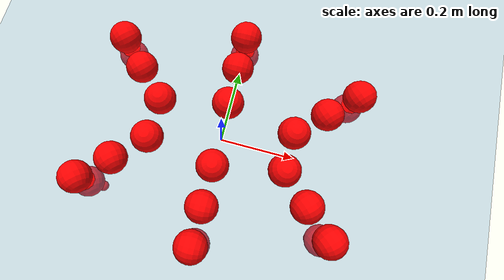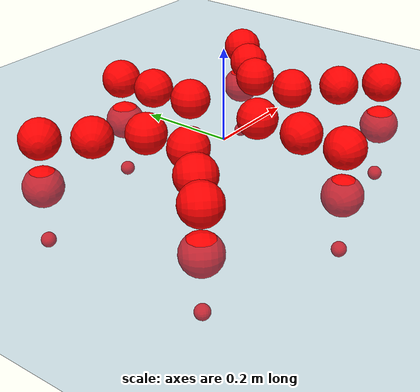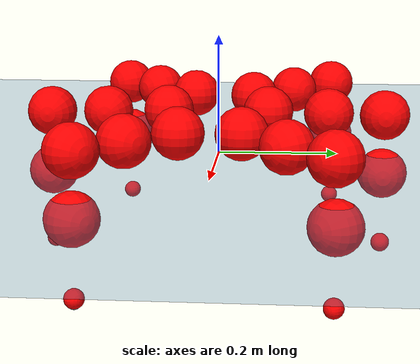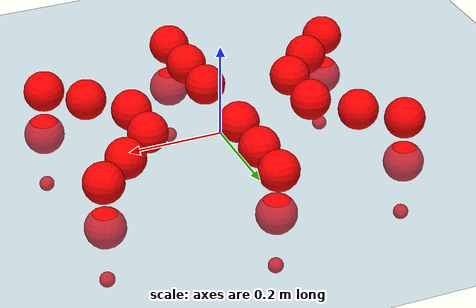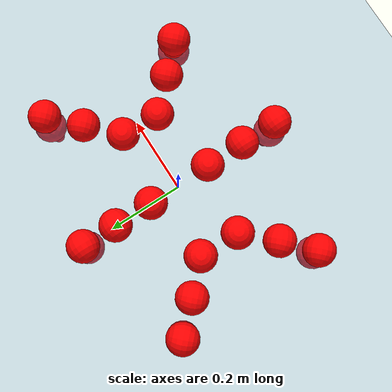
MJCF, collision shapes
<mujoco model="Golem">
  <compiler angle="radian" assetdir="assets" balanceinertia="true" inertiafromgeom="false"/>

  <option timestep="0.005" density="1.2" viscosity="2e-05"/>

  <size nkey="1"/>

  <visual>
    <quality shadowsize="8192"/>
    <map shadowclip="0.5"/>
  </visual>

  <default>
    <default class="/">
      <joint armature="0.01" damping="0.01" frictionloss="0.01"/>
      <geom contype="0" conaffinity="0" group="1" solref="-1000 -80"/>
      <site size="0.01 0.005 0.005" group="5"/>
      <general forcelimited="true" biastype="affine" gainprm="25" biasprm="0 -25 -0.5"/>
      <default class="visual">
        <geom type="mesh" group="2"/>
      </default>
      <default class="collision">
        <geom group="3"/>
      </default>
      <default class="foot">
        <geom size="0.01 0 0" condim="6" group="4" priority="1" solimp="0.015 1 0.01"/>
      </default>
      <default class="reward_collision_sphere">
        <geom group="5" rgba="1 0 0 1"/>
      </default>
    </default>
  </default>

  <asset>
    <texture type="skybox" colorspace="auto" name="//unnamed_texture_0" builtin="gradient" rgb1="0.95 0.95 0.95" rgb2="0.95 0.95 0.95" width="100" height="600"/>
    <texture type="2d" colorspace="auto" name="texplane" builtin="checker" rgb1="0.345 0.575 0.748" rgb2="0.345 0.575 0.748" markrgb="1 1 1" width="512" height="512"/>
    <material name="MatPlane" class="/" texture="texplane" texuniform="true" texrepeat="2 2" specular="0.9"/>
    <mesh name="body" class="/" file="body.stl" scale="0.001 0.001 0.001"/>
    <mesh name="coxa" class="/" file="coxa.stl" scale="0.001 0.001 0.001"/>
    <mesh name="femur" class="/" file="femur.stl" scale="0.001 0.001 0.001"/>
    <mesh name="tibia" class="/" file="tibia.stl" scale="0.001 0.001 0.001"/>
    <mesh name="tarsus" class="/" file="tarsus.stl" scale="0.001 0.001 0.001"/>
  </asset>

  <worldbody>
    <geom name="floor" class="/" size="100 100 0.125" type="plane" group="0" material="MatPlane"/>
    <light name="toplight_shadow" class="/" pos="0 0 5" dir="0.0990148 0.0990148 -0.990148" type="directional" ambient="0.04 0.04 0.04" diffuse="0.55 0.55 0.55" specular="0.12 0.12 0.12"/>
    <light name="toplight_fill" class="/" pos="0 0 5" dir="0.0990148 0.0990148 -0.990148" type="directional" castshadow="false" ambient="0.04 0.04 0.04" diffuse="0.3 0.3 0.3" specular="0.08 0.08 0.08"/>
    <body name="trunk" pos="-0.00206761 -0.0016727 -0.00107578" quat="1 0.000175749 -0.000204828 4.14613e-05">
      <inertial pos="0.0024438 -0.00115671 -0.00404803" quat="0.99996 0.00424938 0.0043976 -0.00648913" mass="4.4083" diaginertia="0.0197347 0.00619747 0.0174943"/>
      <joint name="//unnamed_joint_0" type="free"/>
      <geom name="//unnamed_geom_1" class="/" pos="0 0 0.0709768" quat="1 0 0 0" type="mesh" rgba="0.9 0.9 0.9 1" mesh="body"/>
      <site name="imu" class="/" pos="0.162142 0.0102776 0.109662" size="0.0105347"/>
      <camera name="track" class="/" pos="0 -1.81808 0" quat="0.707107 0.707107 0 0" mode="trackcom"/>
      <camera name="ego_camera" class="/" pos="0.148507 0 0.110901" quat="-0.5 -0.5 0.5 0.5"/>
      <body name="coxa_RR" pos="-0.203711 -0.0782494 0.0709992" quat="0.382624 1.01122e-05 -2.06019e-05 -0.923904">
        <inertial pos="-1.47531e-05 -0.000895321 0.000185227" quat="0.999999 0.000914005 -0.00037203 -0.000584301" mass="0.231241" diaginertia="0.0187857 0.00613702 0.0161151"/>
        <joint name="coxa_joint_RR" class="/" pos="0 0 0" axis="0.000838778 -0.000218013 -1" range="-3.14169 3.13052" armature="0.0109737" damping="0.00470801" frictionloss="0.0107094"/>
        <geom name="//unnamed_geom_2" class="/" type="mesh" rgba="0.2 0.2 0.2 1" mesh="coxa"/>
        <geom name="//unnamed_geom_3" class="reward_collision_sphere" size="0.0421389" pos="-0.0342708 0 0"/>
        <body name="femur_RR" pos="0.0702459 0.00276618 -0.00217687" quat="0.500498 -0.499791 0.49948 0.50023">
          <inertial pos="-0.00267236 -6.28654e-05 -0.00230176" quat="0.99992 0.00893781 0.00726887 -0.00525213" mass="0.226442" diaginertia="0.0186755 0.00597139 0.016337"/>
          <joint name="femur_joint_RR" class="/" pos="0 0 0" axis="-3.23438e-05 0.00258855 -0.999997" stiffness="0.00880703" range="-3.12525 3.14598" armature="0.0106726" damping="0.00865186" frictionloss="0.0104802"/>
          <geom name="//unnamed_geom_4" class="/" type="mesh" rgba="0.9 0.9 0.9 1" mesh="femur"/>
          <geom name="//unnamed_geom_5" class="reward_collision_sphere" size="0.0421389"/>
          <body name="tibia_RR" pos="0.00158083 -0.0988354 -0.00213557" quat="6.146e-05 1 -8.28233e-05 -6.10887e-06">
            <inertial pos="0.000482806 8.88099e-05 -0.0028063" quat="0.999967 0.00263978 -0.000764522 0.00768719" mass="0.241275" diaginertia="0.0202398 0.0065672 0.017162"/>
            <joint name="tibia_joint_RR" class="/" pos="0 0 0" axis="-0.00135459 -0.0146992 0.999891" range="-3.17432 3.13794" armature="0.0101081" damping="0.00273541" frictionloss="0.00917688"/>
            <geom name="//unnamed_geom_6" class="/" type="mesh" rgba="0.2 0.2 0.2 1" mesh="tibia"/>
            <geom name="//unnamed_geom_7" class="reward_collision_sphere" size="0.0421389"/>
            <body name="tarsus_RR" pos="0.0984606 0.00107138 7.38916e-05" quat="1 0.000273689 -3.23411e-06 -6.10394e-05">
              <inertial pos="0.0693753 0.000539546 0.000650653" quat="0.499301 0.489862 0.505763 0.504914" mass="0.234235" diaginertia="0.0191084 0.00608973 0.0169203"/>
              <joint name="tarsus_joint_RR" class="/" pos="0 0 0" axis="0.00052565 0.00983963 0.999951" range="-3.13865 3.09904" armature="0.0103783" damping="0.0444297" frictionloss="0.0101615"/>
              <geom name="//unnamed_geom_8" class="/" type="mesh" rgba="0.9 0.9 0.9 1" mesh="tarsus"/>
              <geom name="foot_1" class="foot" size="0.0106961" pos="0.127944 0 0" quat="0 -0.707107 0 0.707107"/>
              <geom name="//unnamed_geom_10" class="reward_collision_sphere" size="0.0421389"/>
              <geom name="//unnamed_geom_11" class="reward_collision_sphere" size="0.0158021" pos="0.122804 0 0"/>
              <site name="foot_1" class="foot" pos="0.127944 0 0" quat="0 -0.707107 0 0.707107" size="0.0105347"/>
            </body>
          </body>
        </body>
      </body>
      <body name="coxa_RM" pos="0.0011457 -0.118089 0.0731447" quat="0.707232 0.00103731 -0.000897587 -0.70698">
        <inertial pos="-0.00259189 0.000591433 -0.00269845" quat="0.999922 -0.00384957 -0.0025178 -0.0116006" mass="0.234387" diaginertia="0.0184953 0.00618375 0.0166756"/>
        <joint name="coxa_joint_RM" class="/" pos="0 0 0" axis="0.00317164 -0.0024628 -0.999992" range="-3.11813 3.15271" armature="0.0100505" damping="0.00891807" frictionloss="0.0102466"/>
        <geom name="//unnamed_geom_12" class="/" type="mesh" rgba="0.2 0.2 0.2 1" mesh="coxa"/>
        <geom name="//unnamed_geom_13" class="reward_collision_sphere" size="0.0421389" pos="-0.0342708 0 0"/>
        <body name="femur_RM" pos="0.0694368 0.000991709 -0.00234284" quat="0.500412 -0.499216 0.499606 0.500764">
          <inertial pos="0.00276684 -0.000141618 -8.81018e-05" quat="0.999914 -0.0127206 0.00223539 0.00229067" mass="0.237102" diaginertia="0.0192895 0.00601255 0.0170275"/>
          <joint name="femur_joint_RM" class="/" pos="0 0 0" axis="-0.0130651 0.0019924 -0.999913" range="-3.12872 3.14429" armature="0.0105181" damping="0.00742401" frictionloss="0.0108166"/>
          <geom name="//unnamed_geom_14" class="/" type="mesh" rgba="0.9 0.9 0.9 1" mesh="femur"/>
          <geom name="//unnamed_geom_15" class="reward_collision_sphere" size="0.0421389"/>
          <body name="tibia_RM" pos="0.00178469 -0.0975146 0.00026612" quat="0.000119818 1 -1.89213e-06 3.07504e-05">
            <inertial pos="-0.00250764 1.15299e-05 -0.00169746" quat="0.999987 0.00115023 -0.00445114 0.00225205" mass="0.23582" diaginertia="0.0198723 0.00595556 0.0160398"/>
            <joint name="tibia_joint_RM" class="/" pos="0 0 0" axis="-0.00572954 0.00626238 0.999964" range="-3.1318 3.13448" armature="0.0105437" damping="0.0111906" frictionloss="0.0104888"/>
            <geom name="//unnamed_geom_16" class="/" type="mesh" rgba="0.2 0.2 0.2 1" mesh="tibia"/>
            <geom name="//unnamed_geom_17" class="reward_collision_sphere" size="0.0421389"/>
            <body name="tarsus_RM" pos="0.103356 9.27684e-05 -0.000749423" quat="1 2.9283e-05 2.80508e-05 -2.73296e-05">
              <inertial pos="0.0697187 0.00100617 0.000333643" quat="0.495679 0.500701 0.500858 0.502735" mass="0.231556" diaginertia="0.0186841 0.0061724 0.0172145"/>
              <joint name="tarsus_joint_RM" class="/" pos="0 0 0" axis="0.00988131 0.00887368 0.999912" range="-3.14137 3.14139" armature="0.0103585" damping="0.00429269" frictionloss="0.0104797"/>
              <geom name="//unnamed_geom_18" class="/" type="mesh" rgba="0.9 0.9 0.9 1" mesh="tarsus"/>
              <geom name="foot_2" class="foot" size="0.00955208" pos="0.127944 0 0" quat="0 -0.707107 0 0.707107"/>
              <geom name="//unnamed_geom_20" class="reward_collision_sphere" size="0.0421389"/>
              <geom name="//unnamed_geom_21" class="reward_collision_sphere" size="0.0158021" pos="0.122804 0 0"/>
              <site name="foot_2" class="foot" pos="0.127944 0 0" quat="0 -0.707107 0 0.707107" size="0.0105347"/>
            </body>
          </body>
        </body>
      </body>
      <body name="coxa_RF" pos="0.202833 -0.0730956 0.0694105" quat="0.923886 -6.11004e-05 -2.5207e-05 -0.382668">
        <inertial pos="-0.00238631 -0.00124804 6.83272e-05" quat="0.999906 0.0121079 -0.00643755 0.00054891" mass="0.240618" diaginertia="0.0199337 0.00601026 0.0168864"/>
        <joint name="coxa_joint_RF" class="/" pos="0 0 0" axis="0.00337777 -0.00249793 -0.999991" range="-3.14883 3.1374" armature="0.0117363" damping="0.0120524" frictionloss="0.0106994"/>
        <geom name="//unnamed_geom_22" class="/" type="mesh" rgba="0.2 0.2 0.2 1" mesh="coxa"/>
        <geom name="//unnamed_geom_23" class="reward_collision_sphere" size="0.0421389" pos="-0.0342708 0 0"/>
        <body name="femur_RF" pos="0.0688072 -0.000766787 0.00207661" quat="0.499986 -0.500274 0.499742 0.499999">
          <inertial pos="0.00147409 0.00255494 0.00136941" quat="0.999999 0.000500124 -0.00103627 0.000636831" mass="0.22653" diaginertia="0.0198542 0.00597053 0.0168496"/>
          <joint name="femur_joint_RF" class="/" pos="0 0 0" axis="0.00606378 0.00819823 -0.999948" range="-3.16202 3.09472" armature="0.0104275" damping="0.00431312" frictionloss="0.0109882"/>
          <geom name="//unnamed_geom_24" class="/" type="mesh" rgba="0.9 0.9 0.9 1" mesh="femur"/>
          <geom name="//unnamed_geom_25" class="reward_collision_sphere" size="0.0421389"/>
          <body name="tibia_RF" pos="-0.000128813 -0.0957168 0.00200303" quat="-4.38515e-05 1 -3.89048e-05 -7.30844e-05">
            <inertial pos="-0.00221154 -0.00235602 0.00255254" quat="0.99997 0.00319583 -0.00699127 -0.000544589" mass="0.240391" diaginertia="0.0194066 0.00618336 0.0168596"/>
            <joint name="tibia_joint_RF" class="/" pos="0 0 0" axis="-0.00381316 0.00582613 0.999976" range="-3.13541 3.08763" armature="0.0110041" damping="0.00806089" frictionloss="0.0106335"/>
            <geom name="//unnamed_geom_26" class="/" type="mesh" rgba="0.2 0.2 0.2 1" mesh="tibia"/>
            <geom name="//unnamed_geom_27" class="reward_collision_sphere" size="0.0421389"/>
            <body name="tarsus_RF" pos="0.10182 0.00260267 -0.00228841" quat="0.999999 1.61441e-06 0.000334399 0.00109197">
              <inertial pos="0.0698299 -9.07833e-06 -0.000504483" quat="0.499479 0.500664 0.503449 0.496382" mass="0.234426" diaginertia="0.0196861 0.00642929 0.016279"/>
              <joint name="tarsus_joint_RF" class="/" pos="0 0 0" axis="0.00168797 0.000904056 0.999998" range="-3.16567 3.13409" armature="0.0119569" damping="0.00737167" frictionloss="0.0117985"/>
              <geom name="//unnamed_geom_28" class="/" type="mesh" rgba="0.9 0.9 0.9 1" mesh="tarsus"/>
              <geom name="foot_3" class="foot" size="0.0116017" pos="0.127944 0 0" quat="0 -0.707107 0 0.707107"/>
              <geom name="//unnamed_geom_30" class="reward_collision_sphere" size="0.0421389"/>
              <geom name="//unnamed_geom_31" class="reward_collision_sphere" size="0.0158021" pos="0.122804 0 0"/>
              <site name="foot_3" class="foot" pos="0.127944 0 0" quat="0 -0.707107 0 0.707107" size="0.0105347"/>
            </body>
          </body>
        </body>
      </body>
      <body name="coxa_LR" pos="-0.202227 0.0771269 0.069047" quat="0.382028 0.00100759 -0.000431562 0.92415">
        <inertial pos="0.00106233 -0.0011652 -0.00224515" quat="0.999917 -0.00378855 -0.0108364 -0.00592823" mass="0.219914" diaginertia="0.0189805 0.00605818 0.0161135"/>
        <joint name="coxa_joint_LR" class="/" pos="0 0 0" axis="-0.00355828 0.000574003 -0.999994" stiffness="0.00655008" range="-3.12697 3.18894" armature="0.0118686" damping="0.00878567" frictionloss="0.00921237"/>
        <geom name="//unnamed_geom_32" class="/" type="mesh" rgba="0.2 0.2 0.2 1" mesh="coxa"/>
        <geom name="//unnamed_geom_33" class="reward_collision_sphere" size="0.0421389" pos="-0.0342708 0 0"/>
        <body name="femur_LR" pos="0.069268 0.000517056 -0.00167063" quat="0.500178 -0.500106 0.499985 0.499731">
          <inertial pos="-0.000762404 0.000295821 -6.85548e-06" quat="0.999971 0.00243066 0.00625472 0.00369677" mass="0.229802" diaginertia="0.0190159 0.00627792 0.0164138"/>
          <joint name="femur_joint_LR" class="/" pos="0 0 0" axis="-0.000414142 -0.00208659 0.999998" range="-3.13857 3.08772" armature="0.0116017" damping="0.001154" frictionloss="0.0108379"/>
          <geom name="//unnamed_geom_34" class="/" type="mesh" rgba="0.9 0.9 0.9 1" mesh="femur"/>
          <geom name="//unnamed_geom_35" class="reward_collision_sphere" size="0.0421389"/>
          <body name="tibia_LR" pos="-0.00214864 -0.0999688 -0.00138354" quat="0.000796145 0.999999 0.000953195 -0.000490423">
            <inertial pos="0.00199099 0.00275939 0.000333265" quat="0.999912 0.0078039 0.0093857 0.0051604" mass="0.227107" diaginertia="0.0200775 0.00642612 0.0162831"/>
            <joint name="tibia_joint_LR" class="/" pos="0 0 0" axis="0.00174678 0.00410289 -0.99999" stiffness="0.00227128" range="-3.14482 3.14433" armature="0.0103356" damping="0.00842579" frictionloss="0.0113196"/>
            <geom name="//unnamed_geom_36" class="/" type="mesh" rgba="0.2 0.2 0.2 1" mesh="tibia"/>
            <geom name="//unnamed_geom_37" class="reward_collision_sphere" size="0.0421389"/>
            <body name="tarsus_LR" pos="0.103365 0.00165749 -0.000845349" quat="1 -0.000215546 -1.28091e-05 0.000185365">
              <inertial pos="0.0680664 -0.00154742 0.000184663" quat="0.500549 0.501001 0.501769 0.496666" mass="0.229204" diaginertia="0.0191505 0.0060451 0.0163451"/>
              <joint name="tarsus_joint_LR" class="/" pos="0 0 0" axis="0.000644146 -0.000428965 -1" range="-3.11888 3.16161" armature="0.00907726" damping="0.0274964" frictionloss="0.0106243"/>
              <geom name="//unnamed_geom_38" class="/" type="mesh" rgba="0.9 0.9 0.9 1" mesh="tarsus"/>
              <geom name="foot_4" class="foot" size="0.0102033" pos="0.127944 0 0" quat="0.707107 0 -0.707107 0"/>
              <geom name="//unnamed_geom_40" class="reward_collision_sphere" size="0.0421389"/>
              <geom name="//unnamed_geom_41" class="reward_collision_sphere" size="0.0158021" pos="0.122804 0 0"/>
              <site name="foot_4" class="foot" pos="0.127944 0 0" quat="0.707107 0 -0.707107 0" size="0.0105347"/>
            </body>
          </body>
        </body>
      </body>
      <body name="coxa_LM" pos="-0.00264664 0.119873 0.0721009" quat="0.707567 5.40922e-05 -0.000775385 0.706646">
        <inertial pos="0.00300875 -0.00275694 -0.000897152" quat="0.999907 0.00665743 -0.0117202 -0.00196428" mass="0.237096" diaginertia="0.0190978 0.00622815 0.0169186"/>
        <joint name="coxa_joint_LM" class="/" pos="0 0 0" axis="-0.000409307 0.00304825 -0.999995" stiffness="0.00669149" range="-3.14976 3.142" armature="0.0116557" damping="0" frictionloss="0.010324"/>
        <geom name="//unnamed_geom_42" class="/" type="mesh" rgba="0.2 0.2 0.2 1" mesh="coxa"/>
        <geom name="//unnamed_geom_43" class="reward_collision_sphere" size="0.0421389" pos="-0.0342708 0 0"/>
        <body name="femur_LM" pos="0.0680567 -0.000136827 -0.00212903" quat="0.500825 -0.500262 0.499421 0.499491">
          <inertial pos="-0.00267806 -0.000495443 -0.00275405" quat="0.999966 -0.00777453 0.00279744 -0.000384356" mass="0.248969" diaginertia="0.0202761 0.00632643 0.0172579"/>
          <joint name="femur_joint_LM" class="/" pos="0 0 0" axis="0.000358731 -0.00140867 0.999999" stiffness="0.000699056" range="-3.1012 3.12481" armature="0.0116939" damping="0" frictionloss="0.0105958"/>
          <geom name="//unnamed_geom_44" class="/" type="mesh" rgba="0.9 0.9 0.9 1" mesh="femur"/>
          <geom name="//unnamed_geom_45" class="reward_collision_sphere" size="0.0421389"/>
          <body name="tibia_LM" pos="0.00225331 -0.0941731 0.000272592" quat="1.26838e-06 1 0.000121809 0.000148605">
            <inertial pos="0.00273023 0.00143458 0.00225867" quat="1 0.000759542 0.000335697 -0.000529574" mass="0.233063" diaginertia="0.0192279 0.00597772 0.0172473"/>
            <joint name="tibia_joint_LM" class="/" pos="0 0 0" axis="0.0028878 0.00558704 -0.99998" range="-3.15357 3.14053" armature="0.0116726" damping="0" frictionloss="0.00918683"/>
            <geom name="//unnamed_geom_46" class="/" type="mesh" rgba="0.2 0.2 0.2 1" mesh="tibia"/>
            <geom name="//unnamed_geom_47" class="reward_collision_sphere" size="0.0421389"/>
            <body name="tarsus_LM" pos="0.100034 -0.00274254 0.00226338" quat="0.999999 0.00103839 -0.000328513 -0.0001237">
              <inertial pos="0.0685087 0.000613991 0.00189748" quat="0.5012 0.497691 0.49953 0.50157" mass="0.241366" diaginertia="0.0193961 0.00657743 0.0172235"/>
              <joint name="tarsus_joint_LM" class="/" pos="0 0 0" axis="-0.00928246 0.00766834 -0.999928" stiffness="0.0106687" range="-3.18086 3.12081" armature="0.0105994" damping="0.0122858" frictionloss="0.0103717"/>
              <geom name="//unnamed_geom_48" class="/" type="mesh" rgba="0.9 0.9 0.9 1" mesh="tarsus"/>
              <geom name="foot_5" class="foot" size="0.0105245" pos="0.127944 0 0" quat="0.707107 0 -0.707107 0"/>
              <geom name="//unnamed_geom_50" class="reward_collision_sphere" size="0.0421389"/>
              <geom name="//unnamed_geom_51" class="reward_collision_sphere" size="0.0158021" pos="0.122804 0 0"/>
              <site name="foot_5" class="foot" pos="0.127944 0 0" quat="0.707107 0 -0.707107 0" size="0.0105347"/>
            </body>
          </body>
        </body>
      </body>
      <body name="coxa_LF" pos="0.20542 0.0750067 0.0707401" quat="0.923788 -0.00113068 0.00088767 0.382901">
        <inertial pos="0.000598147 0.00263778 -0.000528635" quat="0.999999 -0.00136897 -0.000145258 0.000137745" mass="0.233116" diaginertia="0.0196054 0.00660818 0.0173918"/>
        <joint name="coxa_joint_LF" class="/" pos="0 0 0" axis="0.0126096 0.00625369 -0.999901" range="-3.14636 3.13161" armature="0.0116172" damping="0.0083683" frictionloss="0.0102136"/>
        <geom name="//unnamed_geom_52" class="/" type="mesh" rgba="0.2 0.2 0.2 1" mesh="coxa"/>
        <geom name="//unnamed_geom_53" class="reward_collision_sphere" size="0.0421389" pos="-0.0342708 0 0"/>
        <body name="femur_LF" pos="0.0684243 -0.00173273 -0.0030974" quat="0.499247 -0.500234 0.499513 0.501004">
          <inertial pos="0.00225148 0.000985638 0.00236703" quat="0.999903 -0.0089857 0.0103518 0.00239974" mass="0.231791" diaginertia="0.0189703 0.00637571 0.0168257"/>
          <joint name="femur_joint_LF" class="/" pos="0 0 0" axis="-0.00164759 -0.0111817 0.999936" range="-3.14812 3.0868" armature="0.0104266" damping="0" frictionloss="0.0100507"/>
          <geom name="//unnamed_geom_54" class="/" type="mesh" rgba="0.9 0.9 0.9 1" mesh="femur"/>
          <geom name="//unnamed_geom_55" class="reward_collision_sphere" size="0.0421389"/>
          <body name="tibia_LF" pos="-0.00108318 -0.100267 -0.00118158" quat="-0.000860033 0.999999 0.00102367 -7.2697e-05">
            <inertial pos="-0.000955461 -0.00269559 -0.000316809" quat="0.999987 -0.00151926 0.00158773 -0.00461419" mass="0.232949" diaginertia="0.0191542 0.00622442 0.0168809"/>
            <joint name="tibia_joint_LF" class="/" pos="0 0 0" axis="0.00954368 0.0117559 -0.999885" range="-3.1949 3.13665" armature="0.0116291" damping="0.00442354" frictionloss="0.011989"/>
            <geom name="//unnamed_geom_56" class="/" type="mesh" rgba="0.2 0.2 0.2 1" mesh="tibia"/>
            <geom name="//unnamed_geom_57" class="reward_collision_sphere" size="0.0421389"/>
            <body name="tarsus_LF" pos="0.10133 0.00248676 -0.00146341" quat="0.999999 0.000584995 0.000194839 0.000899828">
              <inertial pos="0.0679749 0.000690381 -0.000457397" quat="0.499505 0.500212 0.498688 0.501591" mass="0.233284" diaginertia="0.019006 0.00611428 0.0160794"/>
              <joint name="tarsus_joint_LF" class="/" pos="0 0 0" axis="-0.013127 -0.00245654 -0.999911" stiffness="0.0298127" range="-3.14177 3.08399" armature="0.0104287" damping="0.0279081" frictionloss="0.0111369"/>
              <geom name="//unnamed_geom_58" class="/" type="mesh" rgba="0.9 0.9 0.9 1" mesh="tarsus"/>
              <geom name="foot_6" class="foot" size="0.00942061" pos="0.127944 0 0" quat="0.707107 0 -0.707107 0"/>
              <geom name="//unnamed_geom_60" class="reward_collision_sphere" size="0.0421389"/>
              <geom name="//unnamed_geom_61" class="reward_collision_sphere" size="0.0158021" pos="0.122804 0 0"/>
              <site name="foot_6" class="foot" pos="0.127944 0 0" quat="0.707107 0 -0.707107 0" size="0.0105347"/>
            </body>
          </body>
        </body>
      </body>
    </body>
  </worldbody>

  <contact>
    <pair class="/" geom1="floor" geom2="foot_1" name="//unnamed_contact_0"/>
    <pair class="/" geom1="floor" geom2="foot_2" name="//unnamed_contact_1"/>
    <pair class="/" geom1="floor" geom2="foot_3" name="//unnamed_contact_2"/>
    <pair class="/" geom1="floor" geom2="foot_4" name="//unnamed_contact_3"/>
    <pair class="/" geom1="floor" geom2="foot_5" name="//unnamed_contact_4"/>
    <pair class="/" geom1="floor" geom2="foot_6" name="//unnamed_contact_5"/>
  </contact>

  <actuator>
    <general name="coxa_joint_RR" class="/" joint="coxa_joint_RR" forcerange="-6.91957 6.91957" gainprm="24.9283" biasprm="0 -24.9283 -0.517796"/>
    <general name="femur_joint_RR" class="/" joint="femur_joint_RR" forcerange="-7.93894 7.93894" gainprm="24.9283" biasprm="0 -24.9283 -0.517796"/>
    <general name="tibia_joint_RR" class="/" joint="tibia_joint_RR" forcerange="-6.98756 6.98756" gainprm="24.9283" biasprm="0 -24.9283 -0.517796"/>
    <general name="tarsus_joint_RR" class="/" joint="tarsus_joint_RR" forcerange="-8.1023 8.1023" gainprm="24.9283" biasprm="0 -24.9283 -0.517796"/>
    <general name="coxa_joint_RM" class="/" joint="coxa_joint_RM" forcerange="-7.68984 7.68984" gainprm="24.9283" biasprm="0 -24.9283 -0.517796"/>
    <general name="femur_joint_RM" class="/" joint="femur_joint_RM" forcerange="-7.73565 7.73565" gainprm="24.9283" biasprm="0 -24.9283 -0.517796"/>
    <general name="tibia_joint_RM" class="/" joint="tibia_joint_RM" forcerange="-6.8894 6.8894" gainprm="24.9283" biasprm="0 -24.9283 -0.517796"/>
    <general name="tarsus_joint_RM" class="/" joint="tarsus_joint_RM" forcerange="-8.42359 8.42359" gainprm="24.9283" biasprm="0 -24.9283 -0.517796"/>
    <general name="coxa_joint_RF" class="/" joint="coxa_joint_RF" forcerange="-7.39393 7.39393" gainprm="24.9283" biasprm="0 -24.9283 -0.517796"/>
    <general name="femur_joint_RF" class="/" joint="femur_joint_RF" forcerange="-7.54987 7.54987" gainprm="24.9283" biasprm="0 -24.9283 -0.517796"/>
    <general name="tibia_joint_RF" class="/" joint="tibia_joint_RF" forcerange="-8.47754 8.47754" gainprm="24.9283" biasprm="0 -24.9283 -0.517796"/>
    <general name="tarsus_joint_RF" class="/" joint="tarsus_joint_RF" forcerange="-7.89205 7.89205" gainprm="24.9283" biasprm="0 -24.9283 -0.517796"/>
    <general name="coxa_joint_LR" class="/" joint="coxa_joint_LR" forcerange="-7.75583 7.75583" gainprm="24.9283" biasprm="0 -24.9283 -0.517796"/>
    <general name="femur_joint_LR" class="/" joint="femur_joint_LR" forcerange="-6.90869 6.90869" gainprm="24.9283" biasprm="0 -24.9283 -0.517796"/>
    <general name="tibia_joint_LR" class="/" joint="tibia_joint_LR" forcerange="-7.50964 7.50964" gainprm="24.9283" biasprm="0 -24.9283 -0.517796"/>
    <general name="tarsus_joint_LR" class="/" joint="tarsus_joint_LR" forcerange="-7.06807 7.06807" gainprm="24.9283" biasprm="0 -24.9283 -0.517796"/>
    <general name="coxa_joint_LM" class="/" joint="coxa_joint_LM" forcerange="-7.50806 7.50806" gainprm="24.9283" biasprm="0 -24.9283 -0.517796"/>
    <general name="femur_joint_LM" class="/" joint="femur_joint_LM" forcerange="-7.8927 7.8927" gainprm="24.9283" biasprm="0 -24.9283 -0.517796"/>
    <general name="tibia_joint_LM" class="/" joint="tibia_joint_LM" forcerange="-6.98557 6.98557" gainprm="24.9283" biasprm="0 -24.9283 -0.517796"/>
    <general name="tarsus_joint_LM" class="/" joint="tarsus_joint_LM" forcerange="-7.99338 7.99338" gainprm="24.9283" biasprm="0 -24.9283 -0.517796"/>
    <general name="coxa_joint_LF" class="/" joint="coxa_joint_LF" forcerange="-7.70079 7.70079" gainprm="24.9283" biasprm="0 -24.9283 -0.517796"/>
    <general name="femur_joint_LF" class="/" joint="femur_joint_LF" forcerange="-7.4423 7.4423" gainprm="24.9283" biasprm="0 -24.9283 -0.517796"/>
    <general name="tibia_joint_LF" class="/" joint="tibia_joint_LF" forcerange="-8.32605 8.32605" gainprm="24.9283" biasprm="0 -24.9283 -0.517796"/>
    <general name="tarsus_joint_LF" class="/" joint="tarsus_joint_LF" forcerange="-7.54041 7.54041" gainprm="24.9283" biasprm="0 -24.9283 -0.517796"/>
  </actuator>

  <sensor>
    <gyro site="imu" name="imu_angular_velocity"/>
    <velocimeter site="imu" name="imu_linear_velocity"/>
    <framelinvel objtype="site" objname="foot_1" name="foot_1_global_linear_velocity"/>
    <framelinvel objtype="site" objname="foot_2" name="foot_2_global_linear_velocity"/>
    <framelinvel objtype="site" objname="foot_3" name="foot_3_global_linear_velocity"/>
    <framelinvel objtype="site" objname="foot_4" name="foot_4_global_linear_velocity"/>
    <framelinvel objtype="site" objname="foot_5" name="foot_5_global_linear_velocity"/>
    <framelinvel objtype="site" objname="foot_6" name="foot_6_global_linear_velocity"/>
  </sensor>

  <keyframe>
    <key name="home" qpos="0 0 0.1457 1 0 0 0 0 0 0 0 0 0 0 0 0 0 0 0 0 0 0 0 0 0 0 0 0 0 0 0"/>
  </keyframe>
</mujoco>
